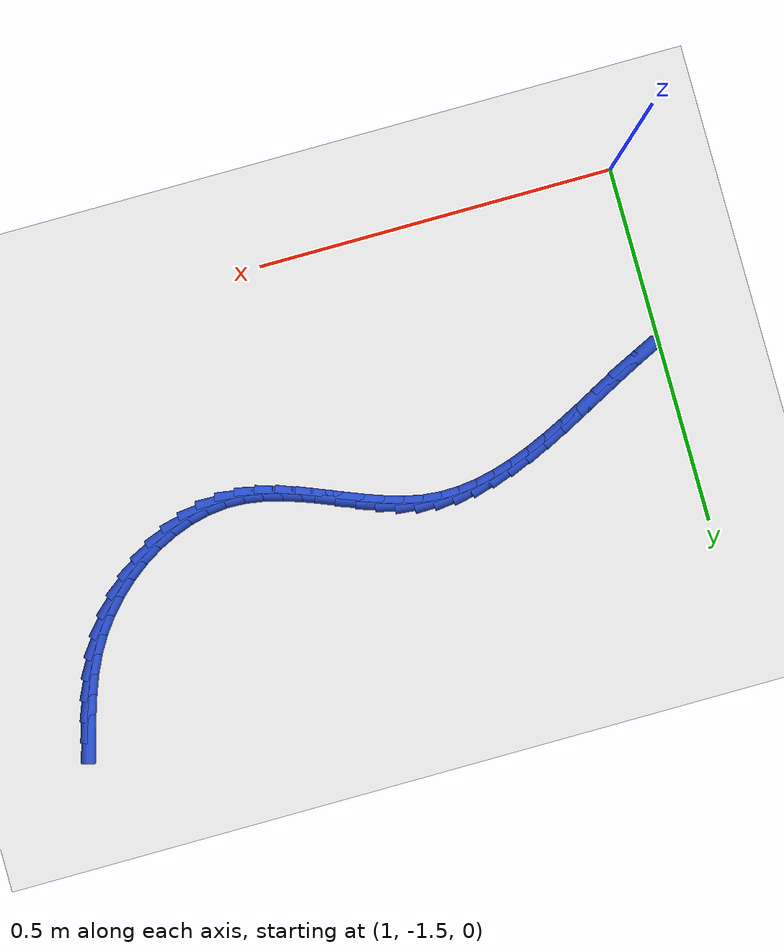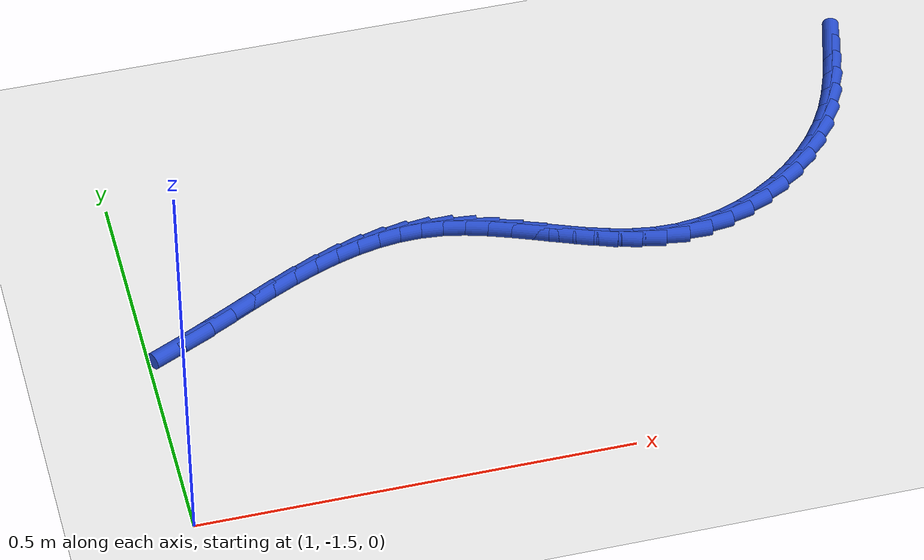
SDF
<sdf version="1.6">
 <world name="default">
  <model name="ground_plane">
   <static>1</static>
   <link name="link">
    <collision name="collision">
     <geometry><plane><normal>0 0 1</normal><size>100 100</size></plane></geometry>
     <surface><friction><ode><mu>100</mu><mu2>50</mu2></ode></friction></surface>
    </collision>
    <visual name="visual">
     <cast_shadows>0</cast_shadows>
     <geometry><plane><normal>0 0 1</normal><size>100 100</size></plane></geometry>
     <material>
      <script><uri>file://media/materials/scripts/gazebo.material</uri><name>Gazebo/WhiteGlow</name></script>
     </material>
    </visual>
   </link>
  </model>
  <model name="line">
   <link name="link_182">
    <pose>1.8942334718487115 -0.9462033213229875 0.01 0 1.57 1.2918371977025007</pose>
    <collision name="collision">
     <geometry><cylinder><radius>0.01</radius><length>0.08</length></cylinder></geometry>
    </collision>
    <visual name="visual">
     <material>
      <script><name>Gazebo/Blue</name><uri>file://media/materials/scripts/gazebo.material</uri></script>
     </material>
     <geometry><cylinder><radius>0.01</radius><length>0.08</length></cylinder></geometry>
    </visual>
   </link>
   <link name="link_183">
    <pose>1.886544879249127 -0.973046367364278 0.01 0 1.57 1.257210589737504</pose>
    <collision name="collision">
     <geometry><cylinder><radius>0.01</radius><length>0.08</length></cylinder></geometry>
    </collision>
    <visual name="visual">
     <material>
      <script><name>Gazebo/Blue</name><uri>file://media/materials/scripts/gazebo.material</uri></script>
     </material>
     <geometry><cylinder><radius>0.01</radius><length>0.08</length></cylinder></geometry>
    </visual>
   </link>
   <link name="link_184">
    <pose>1.877933393349711 -0.9996016083653295 0.01 0 1.57 1.2026276421720483</pose>
    <collision name="collision">
     <geometry><cylinder><radius>0.01</radius><length>0.08</length></cylinder></geometry>
    </collision>
    <visual name="visual">
     <material>
      <script><name>Gazebo/Blue</name><uri>file://media/materials/scripts/gazebo.material</uri></script>
     </material>
     <geometry><cylinder><radius>0.01</radius><length>0.08</length></cylinder></geometry>
    </visual>
   </link>
   <link name="link_185">
    <pose>1.8678966842003752 -1.0256197682130583 0.01 0 1.57 1.1280222258639383</pose>
    <collision name="collision">
     <geometry><cylinder><radius>0.01</radius><length>0.08</length></cylinder></geometry>
    </collision>
    <visual name="visual">
     <material>
      <script><name>Gazebo/Blue</name><uri>file://media/materials/scripts/gazebo.material</uri></script>
     </material>
     <geometry><cylinder><radius>0.01</radius><length>0.08</length></cylinder></geometry>
    </visual>
   </link>
   <link name="link_186">
    <pose>1.855932421851033 -1.0508515707943777 0.01 0 1.57 1.0343246510024426</pose>
    <collision name="collision">
     <geometry><cylinder><radius>0.01</radius><length>0.08</length></cylinder></geometry>
    </collision>
    <visual name="visual">
     <material>
      <script><name>Gazebo/Blue</name><uri>file://media/materials/scripts/gazebo.material</uri></script>
     </material>
     <geometry><cylinder><radius>0.01</radius><length>0.08</length></cylinder></geometry>
    </visual>
   </link>
   <link name="link_187">
    <pose>1.8415444102366099 -1.0750475953819307 0.01 0 1.57 0.9324354841596019</pose>
    <collision name="collision">
     <geometry><cylinder><radius>0.01</radius><length>0.08</length></cylinder></geometry>
    </collision>
    <visual name="visual">
     <material>
      <script><name>Gazebo/Blue</name><uri>file://media/materials/scripts/gazebo.material</uri></script>
     </material>
     <geometry><cylinder><radius>0.01</radius><length>0.08</length></cylinder></geometry>
    </visual>
   </link>
   <link name="link_188">
    <pose>1.8245500843978002 -1.097951026989454 0.01 0 1.57 0.8349583402993153</pose>
    <collision name="collision">
     <geometry><cylinder><radius>0.01</radius><length>0.08</length></cylinder></geometry>
    </collision>
    <visual name="visual">
     <material>
      <script><name>Gazebo/Blue</name><uri>file://media/materials/scripts/gazebo.material</uri></script>
     </material>
     <geometry><cylinder><radius>0.01</radius><length>0.08</length></cylinder></geometry>
    </visual>
   </link>
   <link name="link_189">
    <pose>1.8052240672211366 -1.1192942718359815 0.01 0 1.57 0.740585477318439</pose>
    <collision name="collision">
     <geometry><cylinder><radius>0.01</radius><length>0.08</length></cylinder></geometry>
    </collision>
    <visual name="visual">
     <material>
      <script><name>Gazebo/Blue</name><uri>file://media/materials/scripts/gazebo.material</uri></script>
     </material>
     <geometry><cylinder><radius>0.01</radius><length>0.08</length></cylinder></geometry>
    </visual>
   </link>
   <link name="link_190">
    <pose>1.783877111366675 -1.138808884334415 0.01 0 1.57 0.6469528433802326</pose>
    <collision name="collision">
     <geometry><cylinder><radius>0.01</radius><length>0.08</length></cylinder></geometry>
    </collision>
    <visual name="visual">
     <material>
      <script><name>Gazebo/Blue</name><uri>file://media/materials/scripts/gazebo.material</uri></script>
     </material>
     <geometry><cylinder><radius>0.01</radius><length>0.08</length></cylinder></geometry>
    </visual>
   </link>
   <link name="link_191">
    <pose>1.7608199694944724 -1.1562264188976554 0.01 0 1.57 0.5517086875794616</pose>
    <collision name="collision">
     <geometry><cylinder><radius>0.01</radius><length>0.08</length></cylinder></geometry>
    </collision>
    <visual name="visual">
     <material>
      <script><name>Gazebo/Blue</name><uri>file://media/materials/scripts/gazebo.material</uri></script>
     </material>
     <geometry><cylinder><radius>0.01</radius><length>0.08</length></cylinder></geometry>
    </visual>
   </link>
   <link name="link_192">
    <pose>1.7363633942645835 -1.1712784299386032 0.01 0 1.57 0.45248151328164665</pose>
    <collision name="collision">
     <geometry><cylinder><radius>0.01</radius><length>0.08</length></cylinder></geometry>
    </collision>
    <visual name="visual">
     <material>
      <script><name>Gazebo/Blue</name><uri>file://media/materials/scripts/gazebo.material</uri></script>
     </material>
     <geometry><cylinder><radius>0.01</radius><length>0.08</length></cylinder></geometry>
    </visual>
   </link>
   <link name="link_193">
    <pose>1.7108181383370669 -1.1836964718701601 0.01 0 1.57 0.3468760026459395</pose>
    <collision name="collision">
     <geometry><cylinder><radius>0.01</radius><length>0.08</length></cylinder></geometry>
    </collision>
    <visual name="visual">
     <material>
      <script><name>Gazebo/Blue</name><uri>file://media/materials/scripts/gazebo.material</uri></script>
     </material>
     <geometry><cylinder><radius>0.01</radius><length>0.08</length></cylinder></geometry>
    </visual>
   </link>
   <link name="link_194">
    <pose>1.6844949543719763 -1.1932120991052262 0.01 0 1.57 0.2325456967893405</pose>
    <collision name="collision">
     <geometry><cylinder><radius>0.01</radius><length>0.08</length></cylinder></geometry>
    </collision>
    <visual name="visual">
     <material>
      <script><name>Gazebo/Blue</name><uri>file://media/materials/scripts/gazebo.material</uri></script>
     </material>
     <geometry><cylinder><radius>0.01</radius><length>0.08</length></cylinder></geometry>
    </visual>
   </link>
   <link name="link_195">
    <pose>1.6577045950293687 -1.1995568660567035 0.01 0 1.57 0.10740724806214436</pose>
    <collision name="collision">
     <geometry><cylinder><radius>0.01</radius><length>0.08</length></cylinder></geometry>
    </collision>
    <visual name="visual">
     <material>
      <script><name>Gazebo/Blue</name><uri>file://media/materials/scripts/gazebo.material</uri></script>
     </material>
     <geometry><cylinder><radius>0.01</radius><length>0.08</length></cylinder></geometry>
    </visual>
   </link>
   <link name="link_196">
    <pose>1.6307578129693006 -1.2024623271374926 0.01 0 1.57 -0.02844788857879798</pose>
    <collision name="collision">
     <geometry><cylinder><radius>0.01</radius><length>0.08</length></cylinder></geometry>
    </collision>
    <visual name="visual">
     <material>
      <script><name>Gazebo/Blue</name><uri>file://media/materials/scripts/gazebo.material</uri></script>
     </material>
     <geometry><cylinder><radius>0.01</radius><length>0.08</length></cylinder></geometry>
    </visual>
   </link>
   <link name="link_197">
    <pose>1.6039515124217028 -1.2016995387047933 0.01 0 1.57 -0.15386708057942175</pose>
    <collision name="collision">
     <geometry><cylinder><radius>0.01</radius><length>0.08</length></cylinder></geometry>
    </collision>
    <visual name="visual">
     <material>
      <script><name>Gazebo/Blue</name><uri>file://media/materials/scripts/gazebo.material</uri></script>
     </material>
     <geometry><cylinder><radius>0.01</radius><length>0.08</length></cylinder></geometry>
    </visual>
   </link>
   <link name="link_198">
    <pose>1.5773929582285555 -1.1975804938481225 0.01 0 1.57 -0.2516088535816603</pose>
    <collision name="collision">
     <geometry><cylinder><radius>0.01</radius><length>0.08</length></cylinder></geometry>
    </collision>
    <visual name="visual">
     <material>
      <script><name>Gazebo/Blue</name><uri>file://media/materials/scripts/gazebo.material</uri></script>
     </material>
     <geometry><cylinder><radius>0.01</radius><length>0.08</length></cylinder></geometry>
    </visual>
   </link>
   <link name="link_199">
    <pose>1.5510519270223346 -1.1908093637988186 0.01 0 1.57 -0.32145203107911513</pose>
    <collision name="collision">
     <geometry><cylinder><radius>0.01</radius><length>0.08</length></cylinder></geometry>
    </collision>
    <visual name="visual">
     <material>
      <script><name>Gazebo/Blue</name><uri>file://media/materials/scripts/gazebo.material</uri></script>
     </material>
     <geometry><cylinder><radius>0.01</radius><length>0.08</length></cylinder></geometry>
    </visual>
   </link>
   <link name="link_200">
    <pose>1.5248951165567162 -1.182099102133776 0.01 0 1.57 -0.3649669404354458</pose>
    <collision name="collision">
     <geometry><cylinder><radius>0.01</radius><length>0.08</length></cylinder></geometry>
    </collision>
    <visual name="visual">
     <material>
      <script><name>Gazebo/Blue</name><uri>file://media/materials/scripts/gazebo.material</uri></script>
     </material>
     <geometry><cylinder><radius>0.01</radius><length>0.08</length></cylinder></geometry>
    </visual>
   </link>
   <link name="link_201">
    <pose>1.4988892245853784 -1.1721626624298906 0.01 0 1.57 -0.383644368435383</pose>
    <collision name="collision">
     <geometry><cylinder><radius>0.01</radius><length>0.08</length></cylinder></geometry>
    </collision>
    <visual name="visual">
     <material>
      <script><name>Gazebo/Blue</name><uri>file://media/materials/scripts/gazebo.material</uri></script>
     </material>
     <geometry><cylinder><radius>0.01</radius><length>0.08</length></cylinder></geometry>
    </visual>
   </link>
   <link name="link_202">
    <pose>1.4730009488619968 -1.161712998264057 0.01 0 1.57 -0.37811038812542697</pose>
    <collision name="collision">
     <geometry><cylinder><radius>0.01</radius><length>0.08</length></cylinder></geometry>
    </collision>
    <visual name="visual">
     <material>
      <script><name>Gazebo/Blue</name><uri>file://media/materials/scripts/gazebo.material</uri></script>
     </material>
     <geometry><cylinder><radius>0.01</radius><length>0.08</length></cylinder></geometry>
    </visual>
   </link>
   <link name="link_203">
    <pose>1.4471969871402488 -1.15146306321317 0.01 0 1.57 -0.34782903791465963</pose>
    <collision name="collision">
     <geometry><cylinder><radius>0.01</radius><length>0.08</length></cylinder></geometry>
    </collision>
    <visual name="visual">
     <material>
      <script><name>Gazebo/Blue</name><uri>file://media/materials/scripts/gazebo.material</uri></script>
     </material>
     <geometry><cylinder><radius>0.01</radius><length>0.08</length></cylinder></geometry>
    </visual>
   </link>
   <link name="link_204">
    <pose>1.4214440371738108 -1.1421258108541243 0.01 0 1.57 -0.29113749131769817</pose>
    <collision name="collision">
     <geometry><cylinder><radius>0.01</radius><length>0.08</length></cylinder></geometry>
    </collision>
    <visual name="visual">
     <material>
      <script><name>Gazebo/Blue</name><uri>file://media/materials/scripts/gazebo.material</uri></script>
     </material>
     <geometry><cylinder><radius>0.01</radius><length>0.08</length></cylinder></geometry>
    </visual>
   </link>
   <link name="link_205">
    <pose>1.3957087967163608 -1.1344141947638158 0.01 0 1.57 -0.2057031399557131</pose>
    <collision name="collision">
     <geometry><cylinder><radius>0.01</radius><length>0.08</length></cylinder></geometry>
    </collision>
    <visual name="visual">
     <material>
      <script><name>Gazebo/Blue</name><uri>file://media/materials/scripts/gazebo.material</uri></script>
     </material>
     <geometry><cylinder><radius>0.01</radius><length>0.08</length></cylinder></geometry>
    </visual>
   </link>
   <link name="link_206">
    <pose>1.369957963521575 -1.1290411685191386 0.01 0 1.57 -0.09401589367969647</pose>
    <collision name="collision">
     <geometry><cylinder><radius>0.01</radius><length>0.08</length></cylinder></geometry>
    </collision>
    <visual name="visual">
     <material>
      <script><name>Gazebo/Blue</name><uri>file://media/materials/scripts/gazebo.material</uri></script>
     </material>
     <geometry><cylinder><radius>0.01</radius><length>0.08</length></cylinder></geometry>
    </visual>
   </link>
   <link name="link_207">
    <pose>1.3441528451823923 -1.1266079038295007 0.01 0 1.57 0.019163520464852115</pose>
    <collision name="collision">
     <geometry><cylinder><radius>0.01</radius><length>0.08</length></cylinder></geometry>
    </collision>
    <visual name="visual">
     <material>
      <script><name>Gazebo/Blue</name><uri>file://media/materials/scripts/gazebo.material</uri></script>
     </material>
     <geometry><cylinder><radius>0.01</radius><length>0.08</length></cylinder></geometry>
    </visual>
   </link>
   <link name="link_208">
    <pose>1.31822529896968 -1.1271048277236366 0.01 0 1.57 0.12224341965135009</pose>
    <collision name="collision">
     <geometry><cylinder><radius>0.01</radius><length>0.08</length></cylinder></geometry>
    </collision>
    <visual name="visual">
     <material>
      <script><name>Gazebo/Blue</name><uri>file://media/materials/scripts/gazebo.material</uri></script>
     </material>
     <geometry><cylinder><radius>0.01</radius><length>0.08</length></cylinder></geometry>
    </visual>
   </link>
   <link name="link_209">
    <pose>1.2920971743691034 -1.130314824454916 0.01 0 1.57 0.21280054997527334</pose>
    <collision name="collision">
     <geometry><cylinder><radius>0.01</radius><length>0.08</length></cylinder></geometry>
    </collision>
    <visual name="visual">
     <material>
      <script><name>Gazebo/Blue</name><uri>file://media/materials/scripts/gazebo.material</uri></script>
     </material>
     <geometry><cylinder><radius>0.01</radius><length>0.08</length></cylinder></geometry>
    </visual>
   </link>
   <link name="link_210">
    <pose>1.2656903126231052 -1.1360206073276624 0.01 0 1.57 0.2899188516240387</pose>
    <collision name="collision">
     <geometry><cylinder><radius>0.01</radius><length>0.08</length></cylinder></geometry>
    </collision>
    <visual name="visual">
     <material>
      <script><name>Gazebo/Blue</name><uri>file://media/materials/scripts/gazebo.material</uri></script>
     </material>
     <geometry><cylinder><radius>0.01</radius><length>0.08</length></cylinder></geometry>
    </visual>
   </link>
   <link name="link_211">
    <pose>1.238926554974128 -1.1440048896462005 0.01 0 1.57 0.35379557150500196</pose>
    <collision name="collision">
     <geometry><cylinder><radius>0.01</radius><length>0.08</length></cylinder></geometry>
    </collision>
    <visual name="visual">
     <material>
      <script><name>Gazebo/Blue</name><uri>file://media/materials/scripts/gazebo.material</uri></script>
     </material>
     <geometry><cylinder><radius>0.01</radius><length>0.08</length></cylinder></geometry>
    </visual>
   </link>
   <link name="link_212">
    <pose>1.211727742664613 -1.1540503847148533 0.01 0 1.57 0.405283119696909</pose>
    <collision name="collision">
     <geometry><cylinder><radius>0.01</radius><length>0.08</length></cylinder></geometry>
    </collision>
    <visual name="visual">
     <material>
      <script><name>Gazebo/Blue</name><uri>file://media/materials/scripts/gazebo.material</uri></script>
     </material>
     <geometry><cylinder><radius>0.01</radius><length>0.08</length></cylinder></geometry>
    </visual>
   </link>
   <link name="link_213">
    <pose>1.184015716937004 -1.165939805837946 0.01 0 1.57 0.444670784033994</pose>
    <collision name="collision">
     <geometry><cylinder><radius>0.01</radius><length>0.08</length></cylinder></geometry>
    </collision>
    <visual name="visual">
     <material>
      <script><name>Gazebo/Blue</name><uri>file://media/materials/scripts/gazebo.material</uri></script>
     </material>
     <geometry><cylinder><radius>0.01</radius><length>0.08</length></cylinder></geometry>
    </visual>
   </link>
   <link name="link_214">
    <pose>1.1557518942885698 -1.1794074928420024 0.01 0 1.57 0.4699652301336764</pose>
    <collision name="collision">
     <geometry><cylinder><radius>0.01</radius><length>0.08</length></cylinder></geometry>
    </collision>
    <visual name="visual">
     <material>
      <script><name>Gazebo/Blue</name><uri>file://media/materials/scripts/gazebo.material</uri></script>
     </material>
     <geometry><cylinder><radius>0.01</radius><length>0.08</length></cylinder></geometry>
    </visual>
   </link>
   <link name="link_215">
    <pose>1.1270721098795904 -1.1939745907842414 0.01 0 1.57 0.4820958627835867</pose>
    <collision name="collision">
     <geometry><cylinder><radius>0.01</radius><length>0.08</length></cylinder></geometry>
    </collision>
    <visual name="visual">
     <material>
      <script><name>Gazebo/Blue</name><uri>file://media/materials/scripts/gazebo.material</uri></script>
     </material>
     <geometry><cylinder><radius>0.01</radius><length>0.08</length></cylinder></geometry>
    </visual>
   </link>
   <link name="link_216">
    <pose>1.0981602349272428 -1.2091035294680663 0.01 0 1.57 0.48206976911057087</pose>
    <collision name="collision">
     <geometry><cylinder><radius>0.01</radius><length>0.08</length></cylinder></geometry>
    </collision>
    <visual name="visual">
     <material>
      <script><name>Gazebo/Blue</name><uri>file://media/materials/scripts/gazebo.material</uri></script>
     </material>
     <geometry><cylinder><radius>0.01</radius><length>0.08</length></cylinder></geometry>
    </visual>
   </link>
   <link name="link_217">
    <pose>1.0692001421204382 -1.2242567368979589 0.01 0 1.57 0.46994684886381577</pose>
    <collision name="collision">
     <geometry><cylinder><radius>0.01</radius><length>0.08</length></cylinder></geometry>
    </collision>
    <visual name="visual">
     <material>
      <script><name>Gazebo/Blue</name><uri>file://media/materials/scripts/gazebo.material</uri></script>
     </material>
     <geometry><cylinder><radius>0.01</radius><length>0.08</length></cylinder></geometry>
    </visual>
   </link>
   <link name="link_218">
    <pose>1.0403757041480888 -1.2388966410783961 0.01 0 1.57 0.4448555693438102</pose>
    <collision name="collision">
     <geometry><cylinder><radius>0.01</radius><length>0.08</length></cylinder></geometry>
    </collision>
    <visual name="visual">
     <material>
      <script><name>Gazebo/Blue</name><uri>file://media/materials/scripts/gazebo.material</uri></script>
     </material>
     <geometry><cylinder><radius>0.01</radius><length>0.08</length></cylinder></geometry>
    </visual>
   </link>
  </model>
 </world>
</sdf>
